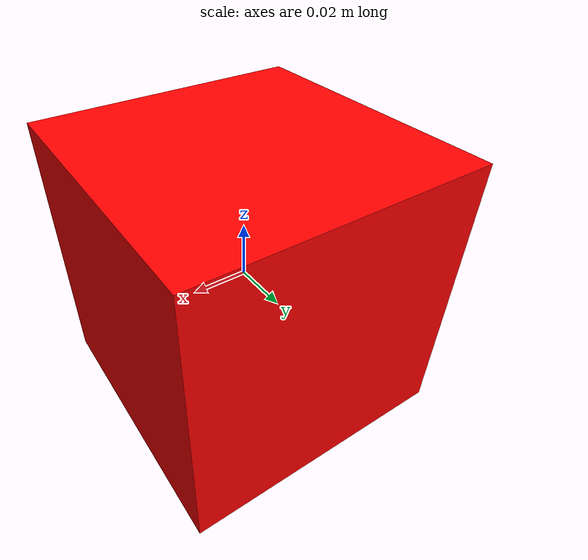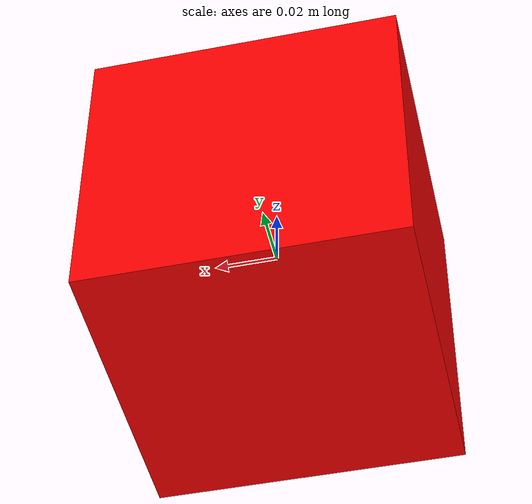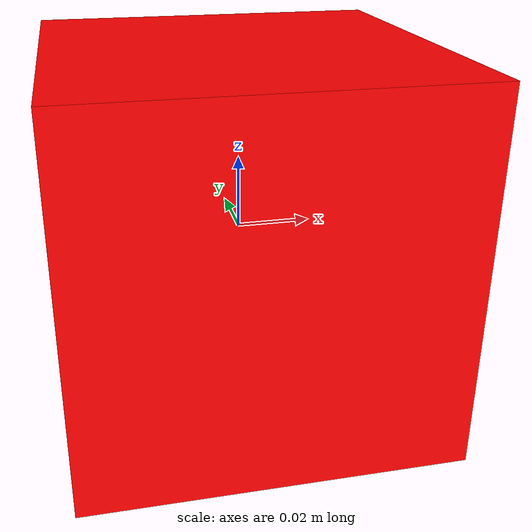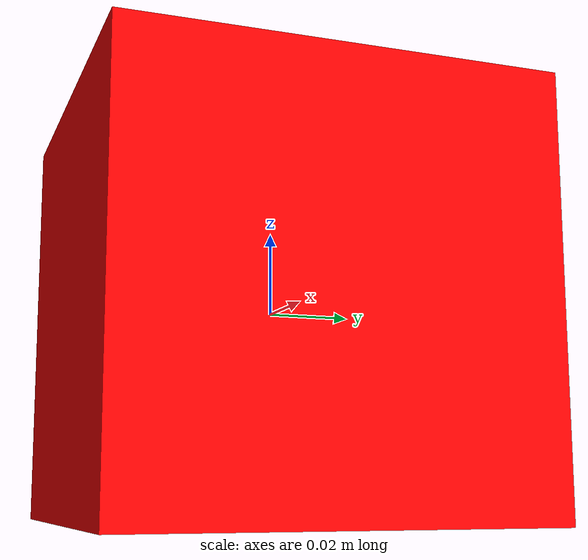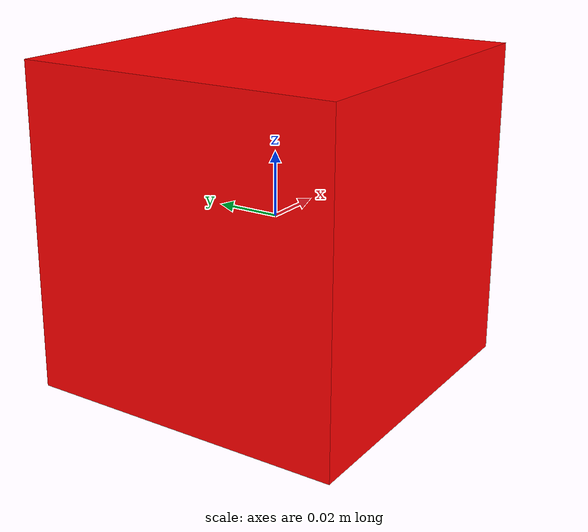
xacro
<?xml version="1.0"?>
<robot xmlns:xacro="http://www.ros.org/wiki/xacro" name="testing_plane">
    <xacro:property name="robot_namespace" value="testing_plane"/>

    <!-- Physical Box Dimensions (meters) -->
    <xacro:property name="h_testing_plane" value="0.1" />
    <xacro:property name="l_testing_plane" value="0.1" />
    <xacro:property name="w_testing_plane" value="0.1" />

    <xacro:property name="absolute_height" value="1.0" />

    <!-- Initial Position in Gazebo World -->
    <xacro:property name="initial_x" value="0.5" />
    <xacro:property name="initial_y" value="0.0" />
    <xacro:property name="initial_z" value="0.05" />

    <!-- World Anchor Link -->
    <link name="${robot_namespace}_dummy_fixed_link">
         <inertial>
            <mass value="1e6" />
            <origin xyz="0 0 0" rpy="0 0 0"/>
            <inertia
                ixx="1e6" ixy="0.0" ixz="0.0"
                iyy="1e6" iyz="0.0"
                izz="1e6"/>
        </inertial>
    </link>

    <joint name="${robot_namespace}_fixed_joint" type="fixed">
        <parent link="${robot_namespace}_dummy_fixed_link"/>
        <child link="${robot_namespace}_dummy_link"/>
        <origin xyz="0 0 0" rpy="0 0 0"/>
    </joint>

    <link name="${robot_namespace}_dummy_link">
        <inertial>
            <mass value="1e6"/>
            <origin xyz="0 0 0" rpy="0 0 0"/>
            <inertia ixx="1e6" ixy="0.0" ixz="0.0"
                    iyy="1e6" iyz="0.0"
                    izz="1e6"/>
        </inertial>
        <collision>
            <origin xyz="0 0 0" rpy="0 0 0" />
            <geometry>
                <box size="1e-6 1e-6 1e-6" />
            </geometry>
        </collision>
    </link>

    <joint name="${robot_namespace}_trasl_x_joint" type="prismatic">
        <parent link="${robot_namespace}_dummy_link"/>
        <child link="${robot_namespace}_trasl_x_link"/>
        <origin xyz="0 0 0" rpy="0 0 0"/>
        <axis xyz="1 0 0"/>
        <limit effort="1e6" lower="-999999" upper="999999" velocity="999999"/>
        <dynamics damping="100" friction="100" />
    </joint>

    <link name="${robot_namespace}_trasl_x_link">
        <collision>
            <origin xyz="0 0 0" rpy="0 0 0" />
            <geometry>
                <box size="1e-6 1e-6 1e-6" />
            </geometry>
        </collision>
        <inertial>
            <mass value="0.001"/>
            <origin xyz="0 0 0" rpy="0 0 0"/>
            <inertia ixx="1e-3" ixy="0.0" ixz="0.0"
                    iyy="1e-3" iyz="0.0"
                    izz="1e-3"/>
        </inertial>
    </link>

    <joint name="${robot_namespace}_trasl_y_joint" type="prismatic">
        <origin xyz="0 0 0" rpy="0 0 0" />
        <parent link="${robot_namespace}_trasl_x_link" />
        <child link="${robot_namespace}_trasl_y_link" />
        <axis xyz="0 1 0"/>
        <limit effort="1e6" lower="-999999" upper="999999" velocity="999999"/>
        <dynamics damping="100" friction="100" />
    </joint>

    <link name="${robot_namespace}_trasl_y_link">
        <collision>
            <origin xyz="0 0 0" rpy="0 0 0" />
            <geometry>
                <box size="1e-6 1e-6 1e-6" />
            </geometry>
        </collision>
        <inertial>
            <mass value="0.001"/>
            <origin xyz="0 0 0" rpy="0 0 0"/>
            <inertia ixx="1e-3" ixy="0.0" ixz="0.0"
                    iyy="1e-3" iyz="0.0"
                    izz="1e-3"/>
        </inertial>
    </link>

    <joint name="${robot_namespace}_trasl_z_joint" type="prismatic">
        <origin xyz="0 0 0" rpy="0 0 0" />
        <parent link="${robot_namespace}_trasl_y_link" />
        <child link="${robot_namespace}_trasl_z_link" />
        <axis xyz="0 0 1"/>
        <limit effort="1e6" lower="-999999" upper="999999" velocity="999999"/>
        <dynamics damping="100" friction="100" />
    </joint>

    <link name="${robot_namespace}_trasl_z_link">
        <collision>
            <origin xyz="0 0 0" rpy="0 0 0" />
            <geometry>
                <box size="1e-6 1e-6 1e-6" />
            </geometry>
        </collision>
        <inertial>
            <mass value="0.001"/>
            <origin xyz="0 0 0" rpy="0 0 0"/>
            <inertia ixx="1e-3" ixy="0.0" ixz="0.0"
                    iyy="1e-3" iyz="0.0"
                    izz="1e-3"/>
        </inertial>
    </link>

    <joint name="${robot_namespace}_rot_x_joint" type="revolute">
        <origin xyz="0 0 0" rpy="0 0 0" />
        <parent link="${robot_namespace}_trasl_z_link" />
        <child link="${robot_namespace}_rot_x_link" />
        <axis xyz="1 0 0"/>
        <limit effort="1e6" lower="-999999" upper="999999" velocity="999999"/>
        <dynamics damping="100" friction="100" />
    </joint>

    <link name="${robot_namespace}_rot_x_link">
        <visual>
            <origin xyz="0 0 0" rpy="0 0 0" />
            <geometry>
                <box size="1e-6 1e-6 1e-6" />
            </geometry>
        </visual>
        <collision>
            <origin xyz="0 0 0" rpy="0 0 0" />
            <geometry>
                <box size="1e-6 1e-6 1e-6" />
            </geometry>
        </collision>
        <inertial>
            <mass value="0.001"/>
            <origin xyz="0 0 0" rpy="0 0 0"/>
            <inertia ixx="1e-3" ixy="0.0" ixz="0.0"
                    iyy="1e-3" iyz="0.0"
                    izz="1e-3"/>
        </inertial>
    </link>

    <joint name="${robot_namespace}_rot_y_joint" type="revolute">
        <origin xyz="0 0 0" rpy="0 0 0" />
        <parent link="${robot_namespace}_rot_x_link" />
        <child link="${robot_namespace}_rot_y_link" />
        <axis xyz="0 1 0"/>
        <limit effort="1e6" lower="-999999" upper="999999" velocity="999999"/>
        <dynamics damping="100" friction="100" />
    </joint>

    <link name="${robot_namespace}_rot_y_link">
        <visual>
            <origin xyz="0 0 0" rpy="0 0 0" />
            <geometry>
                <box size="1e-6 1e-6 1e-6" />
            </geometry>
        </visual>
        <collision>
            <origin xyz="0 0 0" rpy="0 0 0" />
            <geometry>
                <box size="1e-6 1e-6 1e-6" />
            </geometry>
        </collision>
        <inertial>
            <mass value="0.001"/>
            <origin xyz="0 0 0" rpy="0 0 0"/>
            <inertia ixx="1e-3" ixy="0.0" ixz="0.0"
                    iyy="1e-3" iyz="0.0"
                    izz="1e-3"/>
        </inertial>
    </link>

    <joint name="${robot_namespace}_rot_z_joint" type="revolute">
        <origin xyz="0 0 0" rpy="0 0 0" />
        <parent link="${robot_namespace}_rot_y_link" />
        <child link="${robot_namespace}_rot_z_link" />
        <axis xyz="0 0 1"/>
        <limit effort="1e6" lower="-999999" upper="999999" velocity="999999"/>
        <dynamics damping="100" friction="100" />
    </joint>

    <link name="${robot_namespace}_rot_z_link">
        <visual>
            <origin xyz="0 0 0" rpy="0 0 0" />
            <geometry>
                <box size="1e-6 1e-6 1e-6" />
            </geometry>
        </visual>
        <collision>
            <origin xyz="0 0 0" rpy="0 0 0" />
            <geometry>
                <box size="1e-6 1e-6 1e-6" />
            </geometry>
        </collision>
        <inertial>
            <mass value="0.001"/>
            <origin xyz="0 0 0" rpy="0 0 0"/>
            <inertia ixx="1e-3" ixy="0.0" ixz="0.0"
                    iyy="1e-3" iyz="0.0"
                    izz="1e-3"/>
        </inertial>
    </link>

    <joint name="${robot_namespace}_testing_plane_joint" type="fixed">
        <origin xyz="0 0 0" rpy="0 0 0" />
        <parent link="${robot_namespace}_rot_z_link" />
        <child link="${robot_namespace}_link" />
    </joint>

    <link name="${robot_namespace}_link">

        <inertial>
            <mass value="5.0" />
            <origin xyz="0 0 0" rpy="0 0 0"/>
            <inertia
                ixx="1e-1" ixy="0.0" ixz="0.0"
                iyy="1e-1" iyz="0.0"
                izz="1e-1"/>
        </inertial>

        <collision name="collision">
            <origin xyz="0.0 0.0 0.0" rpy="0.0 0.0 0.0"/>
            <geometry>
                <box size="${h_testing_plane} ${l_testing_plane} ${w_testing_plane}"/>
            </geometry>
            <surface>
                <friction>
                    <ode>
                        <mu>0.0</mu>
                        <mu2>0.0</mu2>
                    </ode>
                    <torsional>
                        <ode/>
                    </torsional>
                </friction>
                <contact>
                    <ode/>
                </contact>
                <bounce/>
            </surface>
            <max_contacts>10</max_contacts>
        </collision>

        <visual name="visual">
            <origin xyz="0.0 0.0 0.0" rpy="0.0 0.0 0.0"/>
            <geometry>
                <box size="${h_testing_plane} ${l_testing_plane} ${w_testing_plane}"/>
            </geometry>
            <material name="red">
                <color rgba="1 0 0 1"/>
            </material>
        </visual>
        <self_collide>0</self_collide>
        <kinematic>0</kinematic>
        <gravity>0</gravity>
    </link>

    <gazebo reference="${robot_namespace}_link">
        <mu1>0.0</mu1>
        <mu2>0.0</mu2>
    </gazebo>

    <ros2_control name="${robot_namespace}" type="system">
        <hardware>
            <plugin>gz_ros2_control/GazeboSimSystem</plugin>
        </hardware>
        <joint name="${robot_namespace}_trasl_x_joint">
            <command_interface name="position"/>
            <command_interface name="velocity"/>
            <state_interface name="position">
                <param name="initial_value">${initial_x}</param>
            </state_interface>
            <state_interface name="velocity"/>
            <state_interface name="effort"/>
        </joint>
        <joint name="${robot_namespace}_trasl_y_joint">
            <command_interface name="position"/>
            <command_interface name="velocity"/>
            <state_interface name="position">
                <param name="initial_value">${initial_y}</param>
            </state_interface>
            <state_interface name="velocity"/>
            <state_interface name="effort"/>
        </joint>
        <joint name="${robot_namespace}_trasl_z_joint">
            <command_interface name="position"/>
            <command_interface name="velocity"/>
            <state_interface name="position">
                <param name="initial_value">${initial_z}</param>
            </state_interface>
            <state_interface name="velocity"/>
            <state_interface name="effort"/>
        </joint>
        <joint name="${robot_namespace}_rot_x_joint">
            <command_interface name="position"/>
            <command_interface name="velocity"/>
            <state_interface name="position"/>
            <state_interface name="velocity"/>
            <state_interface name="effort"/>
        </joint>
        <joint name="${robot_namespace}_rot_y_joint">
            <command_interface name="position"/>
            <command_interface name="velocity"/>
            <state_interface name="position"/>
            <state_interface name="velocity"/>
            <state_interface name="effort"/>
        </joint>
        <joint name="${robot_namespace}_rot_z_joint">
            <command_interface name="position"/>
            <command_interface name="velocity"/>
            <state_interface name="position"/>
            <state_interface name="velocity"/>
            <state_interface name="effort"/>
        </joint>
    </ros2_control>

	<xacro:arg name="testing_plane_controllers" default="$(find testing_plane)/config/testing_plane_controllers.yaml" />

    <gazebo>
        <plugin filename="gz_ros2_control-system" name="gz_ros2_control::GazeboSimROS2ControlPlugin">
            <ros>
                <namespace>/testing_plane</namespace>
            </ros>
            <parameters>$(arg testing_plane_controllers)</parameters>
            <controller_manager_node_name>controller_manager</controller_manager_node_name>
        </plugin>
    </gazebo>
</robot>
